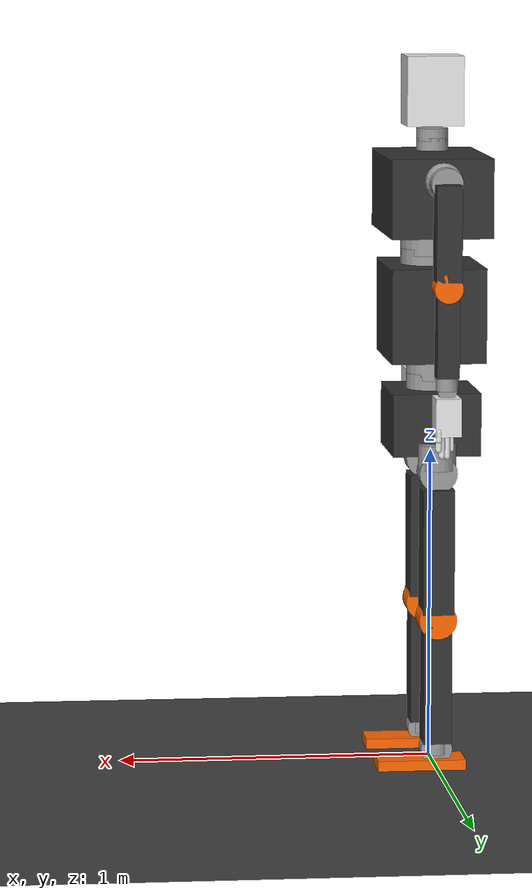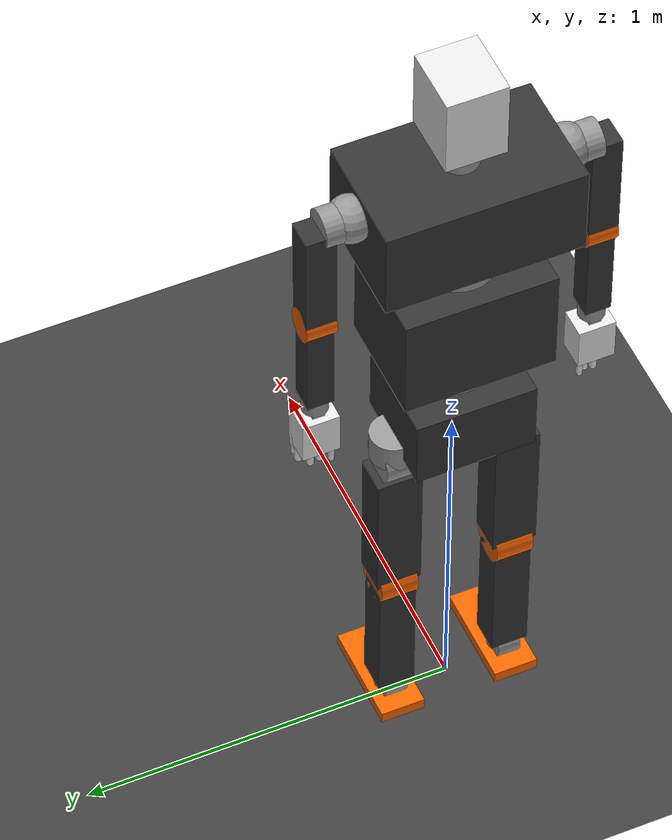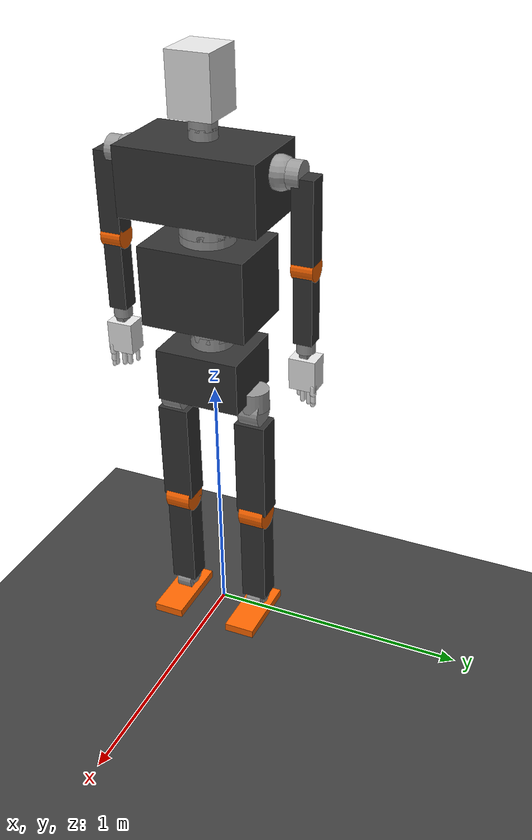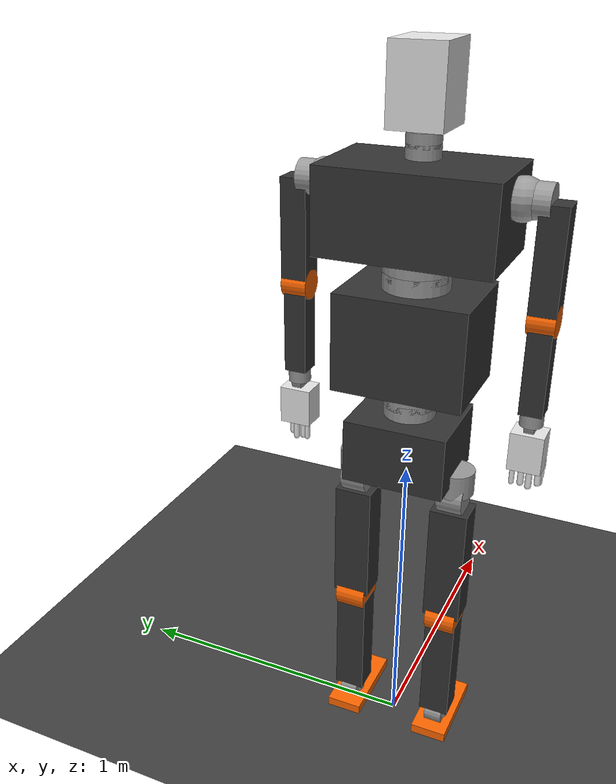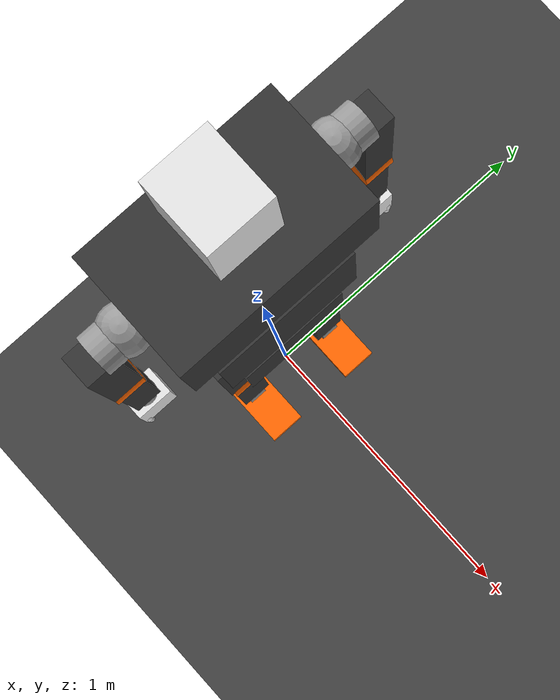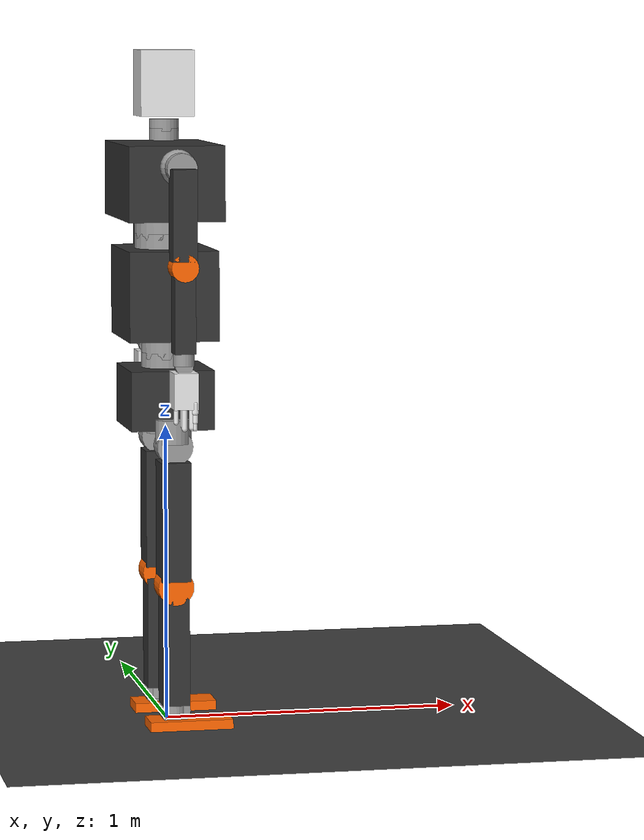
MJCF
<!--
  Boston Dynamics Atlas 2026 - MuJoCo Model
  56 DOF Fully Rotational Humanoid Robot
  Based on CES 2026 announcement specifications

  Author: Al Numan
-->
<mujoco model="atlas_2026">
  <compiler angle="radian" meshdir="meshes/" autolimits="true"/>

  <option timestep="0.0005" iterations="50" solver="Newton" gravity="0 0 -9.81">
    <flag warmstart="enable"/>
  </option>

  <size nconmax="100" njmax="500"/>

  <default>
    <joint armature="0.01" damping="1" limited="true"/>
    <geom condim="4" friction="0.8 0.02 0.01" margin="0.001"/>
    <motor ctrllimited="true"/>
    <position kp="100" kv="10"/>

    <!-- Default classes for different body parts -->
    <default class="hip">
      <joint damping="8.0" armature="0.1"/>
      <geom friction="0.8 0.02 0.01"/>
    </default>

    <default class="knee">
      <joint damping="10.0" armature="0.08"/>
    </default>

    <default class="ankle">
      <joint damping="5.0" armature="0.05"/>
    </default>

    <default class="torso">
      <joint damping="5.0" armature="0.1"/>
    </default>

    <default class="arm">
      <joint damping="4.0" armature="0.05"/>
    </default>

    <default class="wrist">
      <joint damping="2.0" armature="0.02"/>
    </default>

    <default class="hand">
      <joint damping="0.5" armature="0.005"/>
    </default>

    <default class="neck">
      <joint damping="1.0" armature="0.02"/>
    </default>
  </default>

  <asset>
    <texture type="skybox" builtin="gradient" rgb1="0.3 0.5 0.7" rgb2="0 0 0" width="512" height="512"/>
    <texture name="floor_tex" type="2d" builtin="checker" rgb1="0.2 0.2 0.2" rgb2="0.3 0.3 0.3" width="512" height="512"/>
    <material name="floor_mat" texture="floor_tex" texrepeat="20 20" reflectance="0.1"/>
    <material name="atlas_dark" rgba="0.2 0.2 0.2 1"/>
    <material name="atlas_light" rgba="0.6 0.6 0.6 1"/>
    <material name="atlas_orange" rgba="1.0 0.4 0.0 1"/>
    <material name="atlas_white" rgba="0.9 0.9 0.9 1"/>
  </asset>

  <worldbody>
    <!-- Ground plane -->
    <geom name="floor" type="plane" size="50 50 0.1" material="floor_mat" condim="4"/>

    <!-- PELVIS (Base Link) -->
    <body name="pelvis" pos="0 0 1.1">
      <freejoint name="root"/>
      <inertial pos="0 0 0" mass="15.0" diaginertia="0.3 0.35 0.25"/>
      <geom name="pelvis_geom" type="box" size="0.14 0.16 0.10" material="atlas_dark"/>
      <site name="imu_site" pos="0 0 0.05"/>

      <!-- TORSO/SPINE - Lower Spine (Waist) -->
      <body name="waist_yaw_link" pos="0 0 0.12">
        <joint name="waist_yaw" class="torso" type="hinge" axis="0 0 1" range="-1.57 1.57"/>
        <inertial pos="0 0 0" mass="2.0" diaginertia="0.01 0.01 0.01"/>
        <geom type="cylinder" size="0.08 0.03" material="atlas_light"/>

        <body name="waist_pitch_link" pos="0 0 0.04">
          <joint name="waist_pitch" class="torso" type="hinge" axis="0 1 0" range="-0.52 0.70"/>
          <inertial pos="0 0 0" mass="2.0" diaginertia="0.01 0.01 0.01"/>
          <geom type="cylinder" size="0.08 0.03" material="atlas_light"/>

          <body name="torso_link" pos="0 0 0.04">
            <joint name="waist_roll" class="torso" type="hinge" axis="1 0 0" range="-0.44 0.44"/>
            <inertial pos="0 0 0.15" mass="18.0" diaginertia="0.6 0.7 0.5"/>
            <geom type="box" size="0.15 0.20 0.15" pos="0 0 0.15" material="atlas_dark"/>

            <!-- TORSO/SPINE - Upper Spine (Chest) -->
            <body name="chest_yaw_link" pos="0 0 0.32">
              <joint name="chest_yaw" class="torso" type="hinge" axis="0 0 1" range="-1.05 1.05"/>
              <inertial pos="0 0 0" mass="2.5" diaginertia="0.015 0.015 0.02"/>
              <geom type="cylinder" size="0.10 0.03" material="atlas_light"/>

              <body name="chest_pitch_link" pos="0 0 0.04">
                <joint name="chest_pitch" class="torso" type="hinge" axis="0 1 0" range="-0.35 0.52"/>
                <inertial pos="0 0 0" mass="2.5" diaginertia="0.015 0.015 0.02"/>
                <geom type="cylinder" size="0.10 0.03" material="atlas_light"/>

                <body name="chest_link" pos="0 0 0.04">
                  <joint name="chest_roll" class="torso" type="hinge" axis="1 0 0" range="-0.35 0.35"/>
                  <inertial pos="0 0 0.125" mass="12.0" diaginertia="0.4 0.5 0.35"/>
                  <geom type="box" size="0.16 0.26 0.125" pos="0 0 0.125" material="atlas_dark"/>

                  <!-- HEAD/NECK (3 DOF) -->
                  <body name="neck_yaw_link" pos="0 0 0.28">
                    <joint name="neck_yaw" class="neck" type="hinge" axis="0 0 1" range="-1.57 1.57"/>
                    <inertial pos="0 0 0" mass="0.5" diaginertia="0.001 0.001 0.001"/>
                    <geom type="cylinder" size="0.05 0.02" material="atlas_light"/>

                    <body name="neck_pitch_link" pos="0 0 0.03">
                      <joint name="neck_pitch" class="neck" type="hinge" axis="0 1 0" range="-0.70 0.87"/>
                      <inertial pos="0 0 0" mass="0.5" diaginertia="0.001 0.001 0.001"/>
                      <geom type="cylinder" size="0.05 0.02" material="atlas_light"/>

                      <body name="head_link" pos="0 0 0.03">
                        <joint name="neck_roll" class="neck" type="hinge" axis="1 0 0" range="-0.52 0.52"/>
                        <inertial pos="0 0 0.11" mass="3.0" diaginertia="0.02 0.02 0.015"/>
                        <geom type="box" size="0.09 0.08 0.11" pos="0 0 0.11" material="atlas_white"/>
                        <site name="head_site" pos="0 0 0.18"/>
                      </body>
                    </body>
                  </body>

                  <!-- LEFT ARM (8 DOF) -->
                  <body name="l_shoulder_pitch_link" pos="0 0.28 0.18">
                    <joint name="l_shoulder_pitch" class="arm" type="hinge" axis="0 1 0" range="-3.14 3.14"/>
                    <inertial pos="0 0 0" mass="1.5" diaginertia="0.005 0.005 0.005"/>
                    <geom type="sphere" size="0.06" material="atlas_light"/>

                    <body name="l_shoulder_roll_link" pos="0 0.04 0">
                      <joint name="l_shoulder_roll" class="arm" type="hinge" axis="1 0 0" range="-0.35 3.14"/>
                      <inertial pos="0 0 0" mass="1.2" diaginertia="0.003 0.003 0.003"/>
                      <geom type="cylinder" size="0.05 0.04" euler="1.5708 0 0" material="atlas_light"/>

                      <body name="l_upper_arm_link" pos="0 0.05 0">
                        <joint name="l_shoulder_yaw" class="arm" type="hinge" axis="0 0 1" range="-3.14 3.14"/>
                        <inertial pos="0 0 -0.15" mass="2.5" diaginertia="0.025 0.025 0.008"/>
                        <geom type="box" size="0.04 0.04 0.15" pos="0 0 -0.15" material="atlas_dark"/>

                        <body name="l_elbow_pitch_link" pos="0 0 -0.32">
                          <joint name="l_elbow_pitch" class="arm" type="hinge" axis="0 1 0" range="-2.79 0.0"/>
                          <inertial pos="0 0 0" mass="1.0" diaginertia="0.002 0.002 0.002"/>
                          <geom type="cylinder" size="0.045 0.04" euler="1.5708 0 0" material="atlas_orange"/>

                          <body name="l_forearm_link" pos="0 0 -0.02">
                            <joint name="l_elbow_roll" class="arm" type="hinge" axis="0 0 1" range="-3.14 3.14"/>
                            <inertial pos="0 0 -0.13" mass="1.8" diaginertia="0.015 0.015 0.005"/>
                            <geom type="box" size="0.035 0.035 0.13" pos="0 0 -0.13" material="atlas_dark"/>

                            <body name="l_wrist_yaw_link" pos="0 0 -0.28">
                              <joint name="l_wrist_yaw" class="wrist" type="hinge" axis="0 0 1" range="-3.14 3.14"/>
                              <inertial pos="0 0 0" mass="0.4" diaginertia="0.0005 0.0005 0.0005"/>
                              <geom type="cylinder" size="0.035 0.02" material="atlas_light"/>

                              <body name="l_wrist_pitch_link" pos="0 0 -0.02">
                                <joint name="l_wrist_pitch" class="wrist" type="hinge" axis="0 1 0" range="-1.22 1.22"/>
                                <inertial pos="0 0 0" mass="0.3" diaginertia="0.0003 0.0003 0.0003"/>
                                <geom type="cylinder" size="0.03 0.015" euler="1.5708 0 0" material="atlas_light"/>

                                <body name="l_hand_link" pos="0 0 -0.02">
                                  <joint name="l_wrist_roll" class="wrist" type="hinge" axis="1 0 0" range="-3.14 3.14"/>
                                  <inertial pos="0 0 -0.06" mass="0.8" diaginertia="0.002 0.002 0.001"/>
                                  <geom type="box" size="0.04 0.05 0.06" pos="0 0 -0.06" material="atlas_white"/>
                                  <site name="l_hand_site" pos="0 0 -0.12"/>

                                  <!-- Left hand fingers (simplified) -->
                                  <body name="l_thumb_base_link" pos="0.03 0.04 -0.10" euler="0 0 0.5">
                                    <joint name="l_thumb_base" class="hand" type="hinge" axis="0 0 1" range="0 1.57"/>
                                    <geom type="capsule" size="0.012 0.015" pos="0 0 -0.015" material="atlas_white"/>
                                    <body name="l_thumb_tip_link" pos="0 0 -0.035">
                                      <joint name="l_thumb_flex" class="hand" type="hinge" axis="0 1 0" range="0 1.40"/>
                                      <geom type="capsule" size="0.010 0.0125" pos="0 0 -0.0125" material="atlas_white"/>
                                    </body>
                                  </body>

                                  <body name="l_index_link" pos="0.02 0.035 -0.12">
                                    <joint name="l_index_flex" class="hand" type="hinge" axis="0 1 0" range="0 1.74"/>
                                    <geom type="capsule" size="0.010 0.03" pos="0 0 -0.03" material="atlas_white"/>
                                  </body>

                                  <body name="l_middle_link" pos="0 0.012 -0.12">
                                    <joint name="l_middle_flex" class="hand" type="hinge" axis="0 1 0" range="0 1.74"/>
                                    <geom type="capsule" size="0.010 0.0325" pos="0 0 -0.0325" material="atlas_white"/>
                                  </body>

                                  <body name="l_ring_link" pos="0 -0.012 -0.12">
                                    <joint name="l_ring_flex" class="hand" type="hinge" axis="0 1 0" range="0 1.74"/>
                                    <geom type="capsule" size="0.010 0.029" pos="0 0 -0.029" material="atlas_white"/>
                                  </body>

                                  <body name="l_pinky_link" pos="-0.02 -0.035 -0.12">
                                    <joint name="l_pinky_flex" class="hand" type="hinge" axis="0 1 0" range="0 1.74"/>
                                    <geom type="capsule" size="0.008 0.025" pos="0 0 -0.025" material="atlas_white"/>
                                  </body>
                                </body>
                              </body>
                            </body>
                          </body>
                        </body>
                      </body>
                    </body>
                  </body>

                  <!-- RIGHT ARM (8 DOF) -->
                  <body name="r_shoulder_pitch_link" pos="0 -0.28 0.18">
                    <joint name="r_shoulder_pitch" class="arm" type="hinge" axis="0 1 0" range="-3.14 3.14"/>
                    <inertial pos="0 0 0" mass="1.5" diaginertia="0.005 0.005 0.005"/>
                    <geom type="sphere" size="0.06" material="atlas_light"/>

                    <body name="r_shoulder_roll_link" pos="0 -0.04 0">
                      <joint name="r_shoulder_roll" class="arm" type="hinge" axis="1 0 0" range="-3.14 0.35"/>
                      <inertial pos="0 0 0" mass="1.2" diaginertia="0.003 0.003 0.003"/>
                      <geom type="cylinder" size="0.05 0.04" euler="1.5708 0 0" material="atlas_light"/>

                      <body name="r_upper_arm_link" pos="0 -0.05 0">
                        <joint name="r_shoulder_yaw" class="arm" type="hinge" axis="0 0 1" range="-3.14 3.14"/>
                        <inertial pos="0 0 -0.15" mass="2.5" diaginertia="0.025 0.025 0.008"/>
                        <geom type="box" size="0.04 0.04 0.15" pos="0 0 -0.15" material="atlas_dark"/>

                        <body name="r_elbow_pitch_link" pos="0 0 -0.32">
                          <joint name="r_elbow_pitch" class="arm" type="hinge" axis="0 1 0" range="-2.79 0.0"/>
                          <inertial pos="0 0 0" mass="1.0" diaginertia="0.002 0.002 0.002"/>
                          <geom type="cylinder" size="0.045 0.04" euler="1.5708 0 0" material="atlas_orange"/>

                          <body name="r_forearm_link" pos="0 0 -0.02">
                            <joint name="r_elbow_roll" class="arm" type="hinge" axis="0 0 1" range="-3.14 3.14"/>
                            <inertial pos="0 0 -0.13" mass="1.8" diaginertia="0.015 0.015 0.005"/>
                            <geom type="box" size="0.035 0.035 0.13" pos="0 0 -0.13" material="atlas_dark"/>

                            <body name="r_wrist_yaw_link" pos="0 0 -0.28">
                              <joint name="r_wrist_yaw" class="wrist" type="hinge" axis="0 0 1" range="-3.14 3.14"/>
                              <inertial pos="0 0 0" mass="0.4" diaginertia="0.0005 0.0005 0.0005"/>
                              <geom type="cylinder" size="0.035 0.02" material="atlas_light"/>

                              <body name="r_wrist_pitch_link" pos="0 0 -0.02">
                                <joint name="r_wrist_pitch" class="wrist" type="hinge" axis="0 1 0" range="-1.22 1.22"/>
                                <inertial pos="0 0 0" mass="0.3" diaginertia="0.0003 0.0003 0.0003"/>
                                <geom type="cylinder" size="0.03 0.015" euler="1.5708 0 0" material="atlas_light"/>

                                <body name="r_hand_link" pos="0 0 -0.02">
                                  <joint name="r_wrist_roll" class="wrist" type="hinge" axis="1 0 0" range="-3.14 3.14"/>
                                  <inertial pos="0 0 -0.06" mass="0.8" diaginertia="0.002 0.002 0.001"/>
                                  <geom type="box" size="0.04 0.05 0.06" pos="0 0 -0.06" material="atlas_white"/>
                                  <site name="r_hand_site" pos="0 0 -0.12"/>

                                  <!-- Right hand fingers (8 DOF - asymmetric) -->
                                  <body name="r_thumb_base_link" pos="0.03 -0.04 -0.10" euler="0 0 -0.5">
                                    <joint name="r_thumb_base" class="hand" type="hinge" axis="0 0 1" range="0 1.57"/>
                                    <geom type="capsule" size="0.012 0.015" pos="0 0 -0.015" material="atlas_white"/>
                                    <body name="r_thumb_mid_link" pos="0 0 -0.035">
                                      <joint name="r_thumb_flex" class="hand" type="hinge" axis="0 1 0" range="0 1.40"/>
                                      <geom type="capsule" size="0.010 0.0125" pos="0 0 -0.0125" material="atlas_white"/>
                                      <body name="r_thumb_tip_link" pos="0 0 -0.028">
                                        <joint name="r_thumb_tip" class="hand" type="hinge" axis="0 1 0" range="0 1.22"/>
                                        <geom type="capsule" size="0.008 0.01" pos="0 0 -0.01" material="atlas_white"/>
                                      </body>
                                    </body>
                                  </body>

                                  <body name="r_index_link" pos="0.02 -0.035 -0.12">
                                    <joint name="r_index_flex" class="hand" type="hinge" axis="0 1 0" range="0 1.74"/>
                                    <geom type="capsule" size="0.010 0.03" pos="0 0 -0.03" material="atlas_white"/>
                                  </body>

                                  <body name="r_middle_link" pos="0 -0.012 -0.12">
                                    <joint name="r_middle_flex" class="hand" type="hinge" axis="0 1 0" range="0 1.74"/>
                                    <geom type="capsule" size="0.010 0.0325" pos="0 0 -0.0325" material="atlas_white"/>
                                  </body>

                                  <body name="r_ring_link" pos="0 0.012 -0.12">
                                    <joint name="r_ring_flex" class="hand" type="hinge" axis="0 1 0" range="0 1.74"/>
                                    <geom type="capsule" size="0.010 0.029" pos="0 0 -0.029" material="atlas_white"/>
                                  </body>

                                  <body name="r_pinky_link" pos="-0.02 0.035 -0.12">
                                    <joint name="r_pinky_flex" class="hand" type="hinge" axis="0 1 0" range="0 1.74"/>
                                    <geom type="capsule" size="0.008 0.025" pos="0 0 -0.025" material="atlas_white"/>
                                  </body>
                                </body>
                              </body>
                            </body>
                          </body>
                        </body>
                      </body>
                    </body>
                  </body>

                </body>
              </body>
            </body>
          </body>
        </body>
      </body>

      <!-- LEFT LEG (8 DOF) -->
      <body name="l_hip_yaw_link" pos="0 0.16 -0.10">
        <joint name="l_hip_yaw" class="hip" type="hinge" axis="0 0 1" range="-3.14 3.14"/>
        <inertial pos="0 0 0" mass="2.0" diaginertia="0.01 0.01 0.008"/>
        <geom type="cylinder" size="0.06 0.04" material="atlas_light"/>

        <body name="l_hip_roll_link" pos="0 0 -0.05">
          <joint name="l_hip_roll" class="hip" type="hinge" axis="1 0 0" range="-0.70 0.70"/>
          <inertial pos="0 0 0" mass="2.0" diaginertia="0.01 0.008 0.01"/>
          <geom type="cylinder" size="0.06 0.04" euler="1.5708 0 0" material="atlas_light"/>

          <body name="l_thigh_link" pos="0 0 -0.05">
            <joint name="l_hip_pitch" class="hip" type="hinge" axis="0 1 0" range="-1.74 0.87"/>
            <inertial pos="0 0 -0.20" mass="6.0" diaginertia="0.12 0.12 0.03"/>
            <geom type="box" size="0.05 0.06 0.20" pos="0 0 -0.20" material="atlas_dark"/>

            <body name="l_knee_pitch_link" pos="0 0 -0.42">
              <joint name="l_knee_pitch" class="knee" type="hinge" axis="0 1 0" range="0.0 2.62"/>
              <inertial pos="0 0 0" mass="2.5" diaginertia="0.015 0.01 0.015"/>
              <geom type="cylinder" size="0.06 0.05" euler="1.5708 0 0" material="atlas_orange"/>

              <body name="l_shank_link" pos="0 0 -0.02">
                <joint name="l_knee_roll" class="knee" type="hinge" axis="1 0 0" range="-0.26 0.26"/>
                <inertial pos="0 0 -0.19" mass="4.5" diaginertia="0.08 0.08 0.02"/>
                <geom type="box" size="0.045 0.05 0.19" pos="0 0 -0.19" material="atlas_dark"/>

                <body name="l_ankle_pitch_link" pos="0 0 -0.40">
                  <joint name="l_ankle_pitch" class="ankle" type="hinge" axis="0 1 0" range="-1.05 0.70"/>
                  <inertial pos="0 0 0" mass="1.5" diaginertia="0.005 0.004 0.005"/>
                  <geom type="cylinder" size="0.05 0.03" euler="1.5708 0 0" material="atlas_light"/>

                  <body name="l_ankle_roll_link" pos="0 0 0">
                    <joint name="l_ankle_roll" class="ankle" type="hinge" axis="1 0 0" range="-0.44 0.44"/>
                    <inertial pos="0 0 0" mass="1.0" diaginertia="0.002 0.002 0.002"/>
                    <geom type="cylinder" size="0.04 0.02" material="atlas_light"/>

                    <body name="l_foot_link" pos="0 0 -0.03">
                      <joint name="l_ankle_yaw" class="ankle" type="hinge" axis="0 0 1" range="-0.52 0.52"/>
                      <inertial pos="0.05 0 -0.025" mass="1.5" diaginertia="0.003 0.01 0.01"/>
                      <geom type="box" size="0.14 0.06 0.025" pos="0.05 0 -0.025" material="atlas_orange"/>
                      <site name="l_foot_site" pos="0.05 0 -0.05"/>
                    </body>
                  </body>
                </body>
              </body>
            </body>
          </body>
        </body>
      </body>

      <!-- RIGHT LEG (8 DOF) -->
      <body name="r_hip_yaw_link" pos="0 -0.16 -0.10">
        <joint name="r_hip_yaw" class="hip" type="hinge" axis="0 0 1" range="-3.14 3.14"/>
        <inertial pos="0 0 0" mass="2.0" diaginertia="0.01 0.01 0.008"/>
        <geom type="cylinder" size="0.06 0.04" material="atlas_light"/>

        <body name="r_hip_roll_link" pos="0 0 -0.05">
          <joint name="r_hip_roll" class="hip" type="hinge" axis="1 0 0" range="-0.70 0.70"/>
          <inertial pos="0 0 0" mass="2.0" diaginertia="0.01 0.008 0.01"/>
          <geom type="cylinder" size="0.06 0.04" euler="1.5708 0 0" material="atlas_light"/>

          <body name="r_thigh_link" pos="0 0 -0.05">
            <joint name="r_hip_pitch" class="hip" type="hinge" axis="0 1 0" range="-1.74 0.87"/>
            <inertial pos="0 0 -0.20" mass="6.0" diaginertia="0.12 0.12 0.03"/>
            <geom type="box" size="0.05 0.06 0.20" pos="0 0 -0.20" material="atlas_dark"/>

            <body name="r_knee_pitch_link" pos="0 0 -0.42">
              <joint name="r_knee_pitch" class="knee" type="hinge" axis="0 1 0" range="0.0 2.62"/>
              <inertial pos="0 0 0" mass="2.5" diaginertia="0.015 0.01 0.015"/>
              <geom type="cylinder" size="0.06 0.05" euler="1.5708 0 0" material="atlas_orange"/>

              <body name="r_shank_link" pos="0 0 -0.02">
                <joint name="r_knee_roll" class="knee" type="hinge" axis="1 0 0" range="-0.26 0.26"/>
                <inertial pos="0 0 -0.19" mass="4.5" diaginertia="0.08 0.08 0.02"/>
                <geom type="box" size="0.045 0.05 0.19" pos="0 0 -0.19" material="atlas_dark"/>

                <body name="r_ankle_pitch_link" pos="0 0 -0.40">
                  <joint name="r_ankle_pitch" class="ankle" type="hinge" axis="0 1 0" range="-1.05 0.70"/>
                  <inertial pos="0 0 0" mass="1.5" diaginertia="0.005 0.004 0.005"/>
                  <geom type="cylinder" size="0.05 0.03" euler="1.5708 0 0" material="atlas_light"/>

                  <body name="r_ankle_roll_link" pos="0 0 0">
                    <joint name="r_ankle_roll" class="ankle" type="hinge" axis="1 0 0" range="-0.44 0.44"/>
                    <inertial pos="0 0 0" mass="1.0" diaginertia="0.002 0.002 0.002"/>
                    <geom type="cylinder" size="0.04 0.02" material="atlas_light"/>

                    <body name="r_foot_link" pos="0 0 -0.03">
                      <joint name="r_ankle_yaw" class="ankle" type="hinge" axis="0 0 1" range="-0.52 0.52"/>
                      <inertial pos="0.05 0 -0.025" mass="1.5" diaginertia="0.003 0.01 0.01"/>
                      <geom type="box" size="0.14 0.06 0.025" pos="0.05 0 -0.025" material="atlas_orange"/>
                      <site name="r_foot_site" pos="0.05 0 -0.05"/>
                    </body>
                  </body>
                </body>
              </body>
            </body>
          </body>
        </body>
      </body>

    </body>
  </worldbody>

  <!-- ACTUATORS - 56 DOF Total -->
  <actuator>
    <!-- Torso actuators (6 DOF) -->
    <motor name="waist_yaw_motor" joint="waist_yaw" gear="400" ctrlrange="-1 1"/>
    <motor name="waist_pitch_motor" joint="waist_pitch" gear="400" ctrlrange="-1 1"/>
    <motor name="waist_roll_motor" joint="waist_roll" gear="400" ctrlrange="-1 1"/>
    <motor name="chest_yaw_motor" joint="chest_yaw" gear="300" ctrlrange="-1 1"/>
    <motor name="chest_pitch_motor" joint="chest_pitch" gear="300" ctrlrange="-1 1"/>
    <motor name="chest_roll_motor" joint="chest_roll" gear="300" ctrlrange="-1 1"/>

    <!-- Head actuators (3 DOF) -->
    <motor name="neck_yaw_motor" joint="neck_yaw" gear="30" ctrlrange="-1 1"/>
    <motor name="neck_pitch_motor" joint="neck_pitch" gear="30" ctrlrange="-1 1"/>
    <motor name="neck_roll_motor" joint="neck_roll" gear="30" ctrlrange="-1 1"/>

    <!-- Left arm actuators (8 DOF) -->
    <motor name="l_shoulder_pitch_motor" joint="l_shoulder_pitch" gear="200" ctrlrange="-1 1"/>
    <motor name="l_shoulder_roll_motor" joint="l_shoulder_roll" gear="200" ctrlrange="-1 1"/>
    <motor name="l_shoulder_yaw_motor" joint="l_shoulder_yaw" gear="150" ctrlrange="-1 1"/>
    <motor name="l_elbow_pitch_motor" joint="l_elbow_pitch" gear="100" ctrlrange="-1 1"/>
    <motor name="l_elbow_roll_motor" joint="l_elbow_roll" gear="100" ctrlrange="-1 1"/>
    <motor name="l_wrist_yaw_motor" joint="l_wrist_yaw" gear="50" ctrlrange="-1 1"/>
    <motor name="l_wrist_pitch_motor" joint="l_wrist_pitch" gear="50" ctrlrange="-1 1"/>
    <motor name="l_wrist_roll_motor" joint="l_wrist_roll" gear="50" ctrlrange="-1 1"/>

    <!-- Left hand actuators (7 DOF) -->
    <motor name="l_thumb_base_motor" joint="l_thumb_base" gear="20" ctrlrange="-1 1"/>
    <motor name="l_thumb_flex_motor" joint="l_thumb_flex" gear="20" ctrlrange="-1 1"/>
    <motor name="l_index_flex_motor" joint="l_index_flex" gear="20" ctrlrange="-1 1"/>
    <motor name="l_middle_flex_motor" joint="l_middle_flex" gear="20" ctrlrange="-1 1"/>
    <motor name="l_ring_flex_motor" joint="l_ring_flex" gear="20" ctrlrange="-1 1"/>
    <motor name="l_pinky_flex_motor" joint="l_pinky_flex" gear="20" ctrlrange="-1 1"/>

    <!-- Right arm actuators (8 DOF) -->
    <motor name="r_shoulder_pitch_motor" joint="r_shoulder_pitch" gear="200" ctrlrange="-1 1"/>
    <motor name="r_shoulder_roll_motor" joint="r_shoulder_roll" gear="200" ctrlrange="-1 1"/>
    <motor name="r_shoulder_yaw_motor" joint="r_shoulder_yaw" gear="150" ctrlrange="-1 1"/>
    <motor name="r_elbow_pitch_motor" joint="r_elbow_pitch" gear="100" ctrlrange="-1 1"/>
    <motor name="r_elbow_roll_motor" joint="r_elbow_roll" gear="100" ctrlrange="-1 1"/>
    <motor name="r_wrist_yaw_motor" joint="r_wrist_yaw" gear="50" ctrlrange="-1 1"/>
    <motor name="r_wrist_pitch_motor" joint="r_wrist_pitch" gear="50" ctrlrange="-1 1"/>
    <motor name="r_wrist_roll_motor" joint="r_wrist_roll" gear="50" ctrlrange="-1 1"/>

    <!-- Right hand actuators (8 DOF) -->
    <motor name="r_thumb_base_motor" joint="r_thumb_base" gear="20" ctrlrange="-1 1"/>
    <motor name="r_thumb_flex_motor" joint="r_thumb_flex" gear="20" ctrlrange="-1 1"/>
    <motor name="r_thumb_tip_motor" joint="r_thumb_tip" gear="15" ctrlrange="-1 1"/>
    <motor name="r_index_flex_motor" joint="r_index_flex" gear="20" ctrlrange="-1 1"/>
    <motor name="r_middle_flex_motor" joint="r_middle_flex" gear="20" ctrlrange="-1 1"/>
    <motor name="r_ring_flex_motor" joint="r_ring_flex" gear="20" ctrlrange="-1 1"/>
    <motor name="r_pinky_flex_motor" joint="r_pinky_flex" gear="20" ctrlrange="-1 1"/>

    <!-- Left leg actuators (8 DOF) -->
    <motor name="l_hip_yaw_motor" joint="l_hip_yaw" gear="350" ctrlrange="-1 1"/>
    <motor name="l_hip_roll_motor" joint="l_hip_roll" gear="350" ctrlrange="-1 1"/>
    <motor name="l_hip_pitch_motor" joint="l_hip_pitch" gear="450" ctrlrange="-1 1"/>
    <motor name="l_knee_pitch_motor" joint="l_knee_pitch" gear="500" ctrlrange="-1 1"/>
    <motor name="l_knee_roll_motor" joint="l_knee_roll" gear="150" ctrlrange="-1 1"/>
    <motor name="l_ankle_pitch_motor" joint="l_ankle_pitch" gear="200" ctrlrange="-1 1"/>
    <motor name="l_ankle_roll_motor" joint="l_ankle_roll" gear="150" ctrlrange="-1 1"/>
    <motor name="l_ankle_yaw_motor" joint="l_ankle_yaw" gear="100" ctrlrange="-1 1"/>

    <!-- Right leg actuators (8 DOF) -->
    <motor name="r_hip_yaw_motor" joint="r_hip_yaw" gear="350" ctrlrange="-1 1"/>
    <motor name="r_hip_roll_motor" joint="r_hip_roll" gear="350" ctrlrange="-1 1"/>
    <motor name="r_hip_pitch_motor" joint="r_hip_pitch" gear="450" ctrlrange="-1 1"/>
    <motor name="r_knee_pitch_motor" joint="r_knee_pitch" gear="500" ctrlrange="-1 1"/>
    <motor name="r_knee_roll_motor" joint="r_knee_roll" gear="150" ctrlrange="-1 1"/>
    <motor name="r_ankle_pitch_motor" joint="r_ankle_pitch" gear="200" ctrlrange="-1 1"/>
    <motor name="r_ankle_roll_motor" joint="r_ankle_roll" gear="150" ctrlrange="-1 1"/>
    <motor name="r_ankle_yaw_motor" joint="r_ankle_yaw" gear="100" ctrlrange="-1 1"/>
  </actuator>

  <!-- SENSORS -->
  <sensor>
    <!-- IMU sensors -->
    <accelerometer name="imu_acc" site="imu_site"/>
    <gyro name="imu_gyro" site="imu_site"/>
    <framequat name="imu_quat" objtype="site" objname="imu_site"/>

    <!-- Contact sensors -->
    <touch name="l_foot_touch" site="l_foot_site"/>
    <touch name="r_foot_touch" site="r_foot_site"/>

    <!-- Hand sensors -->
    <touch name="l_hand_touch" site="l_hand_site"/>
    <touch name="r_hand_touch" site="r_hand_site"/>

    <!-- Joint position sensors -->
    <jointpos name="waist_yaw_pos" joint="waist_yaw"/>
    <jointpos name="waist_pitch_pos" joint="waist_pitch"/>
    <jointpos name="waist_roll_pos" joint="waist_roll"/>
    <jointpos name="chest_yaw_pos" joint="chest_yaw"/>
    <jointpos name="chest_pitch_pos" joint="chest_pitch"/>
    <jointpos name="chest_roll_pos" joint="chest_roll"/>

    <jointpos name="l_hip_yaw_pos" joint="l_hip_yaw"/>
    <jointpos name="l_hip_roll_pos" joint="l_hip_roll"/>
    <jointpos name="l_hip_pitch_pos" joint="l_hip_pitch"/>
    <jointpos name="l_knee_pitch_pos" joint="l_knee_pitch"/>
    <jointpos name="l_knee_roll_pos" joint="l_knee_roll"/>
    <jointpos name="l_ankle_pitch_pos" joint="l_ankle_pitch"/>
    <jointpos name="l_ankle_roll_pos" joint="l_ankle_roll"/>
    <jointpos name="l_ankle_yaw_pos" joint="l_ankle_yaw"/>

    <jointpos name="r_hip_yaw_pos" joint="r_hip_yaw"/>
    <jointpos name="r_hip_roll_pos" joint="r_hip_roll"/>
    <jointpos name="r_hip_pitch_pos" joint="r_hip_pitch"/>
    <jointpos name="r_knee_pitch_pos" joint="r_knee_pitch"/>
    <jointpos name="r_knee_roll_pos" joint="r_knee_roll"/>
    <jointpos name="r_ankle_pitch_pos" joint="r_ankle_pitch"/>
    <jointpos name="r_ankle_roll_pos" joint="r_ankle_roll"/>
    <jointpos name="r_ankle_yaw_pos" joint="r_ankle_yaw"/>

    <!-- Joint velocity sensors -->
    <jointvel name="l_hip_pitch_vel" joint="l_hip_pitch"/>
    <jointvel name="l_knee_pitch_vel" joint="l_knee_pitch"/>
    <jointvel name="r_hip_pitch_vel" joint="r_hip_pitch"/>
    <jointvel name="r_knee_pitch_vel" joint="r_knee_pitch"/>
  </sensor>

  <!-- KEYFRAMES - Default Poses -->
  <keyframe>
    <key name="standing" qpos="0 0 1.1 1 0 0 0
      0 0 0 0 0 0
      0 0 0
      0 0 0 0 0 0 0 0 0 0 0 0 0 0
      0 0 0 0 0 0 0 0 0 0 0 0 0 0 0
      0 -0.4 0.8 0 -0.4 0 0 0
      0 -0.4 0.8 0 -0.4 0 0 0"/>

    <key name="crouch" qpos="0 0 0.85 1 0 0 0
      0 0.1 0 0 0 0
      0 0.1 0
      0.2 0.3 0 -1.0 0 0 0 0 0 0 0 0 0 0
      0.2 -0.3 0 -1.0 0 0 0 0 0 0 0 0 0 0 0
      0 -0.8 1.4 0 -0.6 0 0 0
      0 -0.8 1.4 0 -0.6 0 0 0"/>

    <key name="arms_up" qpos="0 0 1.1 1 0 0 0
      0 0 0 0 0 0
      0 0 0
      -2.5 0.3 0 -0.3 0 0 0 0 0 0 0 0 0 0
      -2.5 -0.3 0 -0.3 0 0 0 0 0 0 0 0 0 0 0
      0 -0.4 0.8 0 -0.4 0 0 0
      0 -0.4 0.8 0 -0.4 0 0 0"/>
  </keyframe>

</mujoco>
